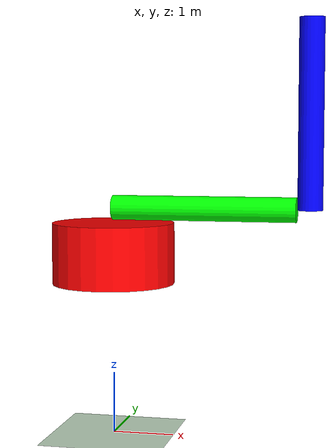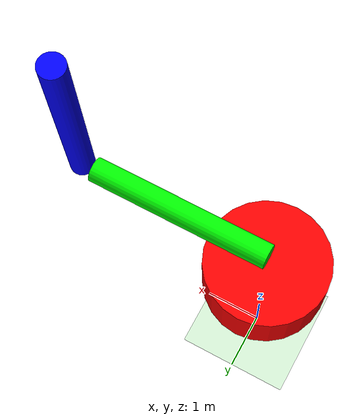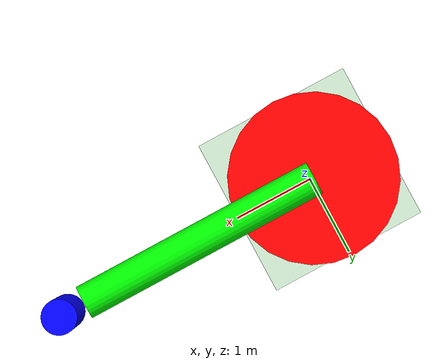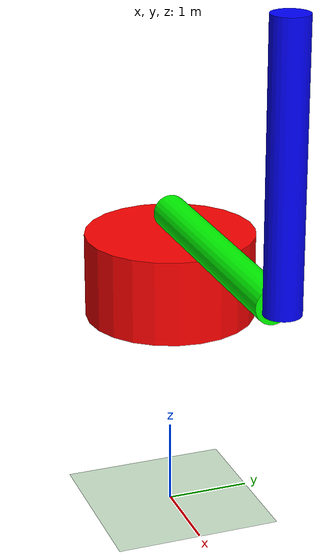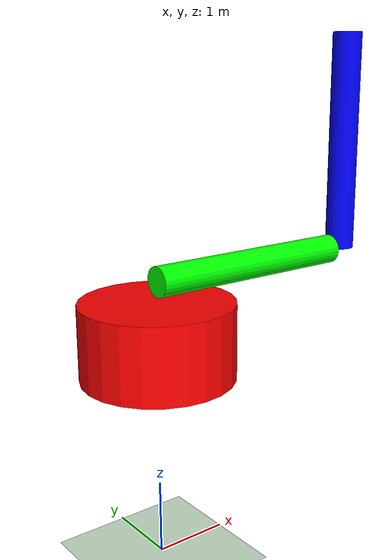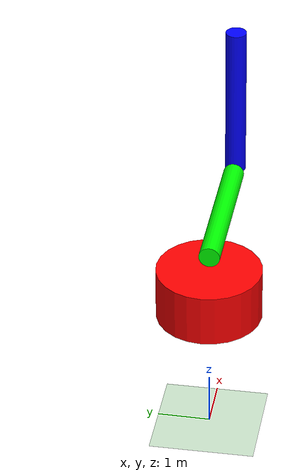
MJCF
<?xml version="1.0" ?>
<!-- |    This document was autogenerated by xacro from /home/lucas/utfpr/ic/repo/bkp_ic_2022/model/furuta.xacro | -->
<!-- |    EDITING THIS FILE BY HAND IS NOT RECOMMENDED                                 | -->
<mujoco model="furuta_pendulum">
  <compiler angle="degree"/>
  <asset>
    <texture builtin="checker" height="100" name="texplane" rgb1="0 0 0" rgb2="0.8 0.8 0.8" type="2d" width="100"/>
    <material name="MatPlane" reflectance="0.5" shininess="1" specular="1" texrepeat="2 2" texture="texplane"/>
  </asset>
  <option integrator="Euler" iterations="50" solver="PGS" timestep="0.003">
  </option>
  <worldbody>
    <light cutoff="100" diffuse="1 1 1" dir="-0 0 -1.3" directional="true" exponent="1" pos="0 0 1.3" specular=".1 .1 .1"/>
    <geom condim="3" friction="1 .1 .1" material="MatPlane" name="floor" pos="0 0 0" rgba="0.8 0.9 0.8 1" size="1 1 0.125" type="plane"/>
    <body name="suport" pos="0 0 3">
      <geom mass="100" rgba="1 0 0 1" size="1 .5" type="cylinder"/>
      <body axisangle="0 1 0 90" name="haste_horizontal" pos="1.5 0 .75">
        <geom mass="10" name="haste_horizontal_geom" rgba="0 1 0 1" size=".2 1.5" type="cylinder"/>
        <inertial diaginertia="0.1975 0.1975 0.020000000000000004" mass="1" pos="0 0 0"/>
        <joint axis="1 0 0" name="motor" pos="0 0 -1.5" type="hinge"/>
        <body axisangle="0 1 0 90" name="haste_vertical" pos="-1.5 0 1.71">
          <geom mass="10" name="haste_vertical_geom" rgba="0 0 1 1" size=".2 1.5" type="cylinder"/>
          <inertial diaginertia="0.1975 0.1975 0.020000000000000004" mass="1" pos="0 0 0"/>
          <joint axis="1 0 0" name="motor_vertical" pos="0 0 1.5" type="hinge"/>
        </body>
      </body>
    </body>
  </worldbody>
  <actuator>
    <motor joint="motor" name="motor"/>
    <motor joint="motor_vertical" name="motor_vertical"/>
  </actuator>
</mujoco>
